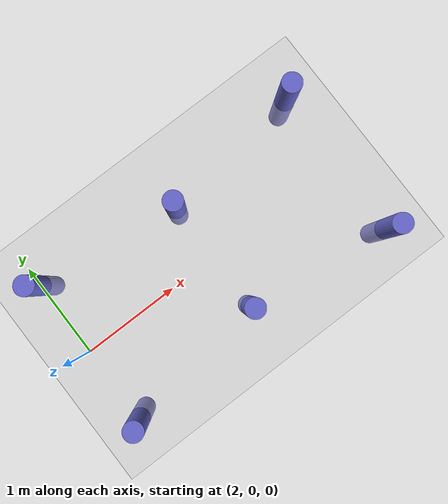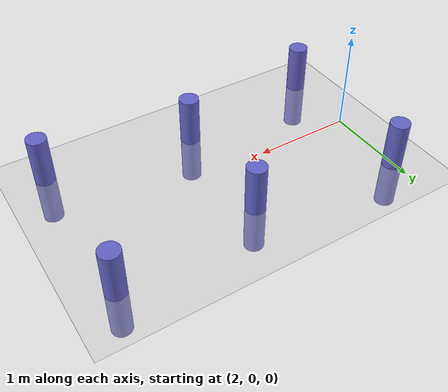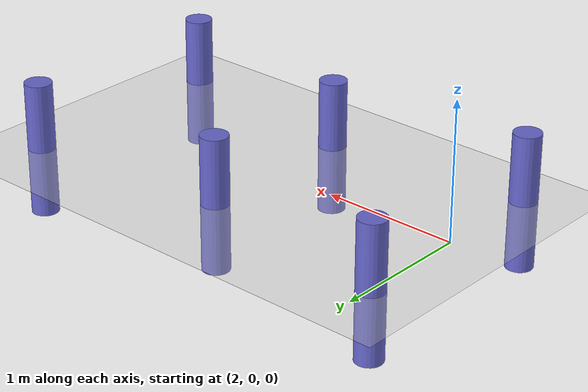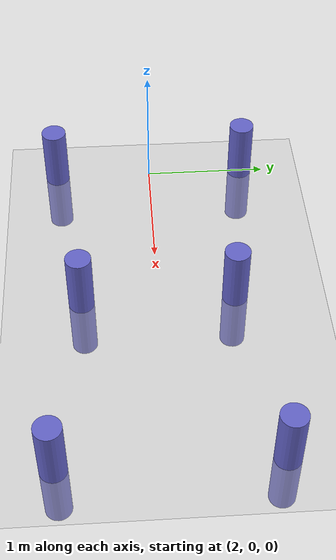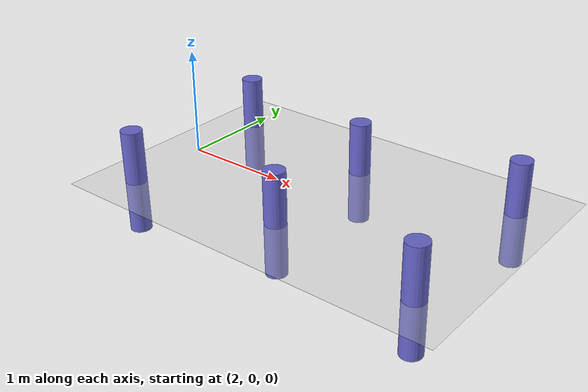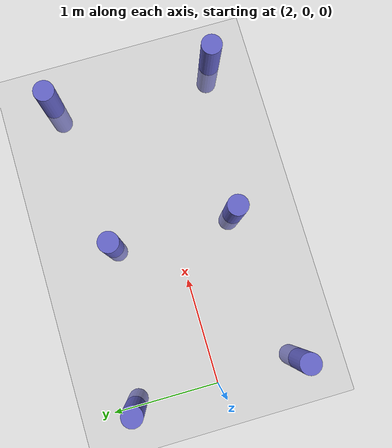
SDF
<?xml version="1.0"?>
<sdf version="1.8">
  <world name="default">

    <!-- Physics -->
    <physics type="ode">
      <real_time_update_rate>1000.0</real_time_update_rate>
      <max_step_size>0.001</max_step_size>
      <real_time_factor>1</real_time_factor>
    </physics>

    <!-- Required system plugins -->
    <plugin filename="gz-sim-physics-system"     name="gz::sim::systems::Physics"/>
    <plugin filename="gz-sim-user-commands-system" name="gz::sim::systems::UserCommands"/>
    <plugin filename="gz-sim-scene-broadcaster-system" name="gz::sim::systems::SceneBroadcaster"/>
    <plugin filename="gz-sim-sensors-system"     name="gz::sim::systems::Sensors">
      <render_engine>ogre2</render_engine>
    </plugin>
    <plugin filename="gz-sim-imu-system"         name="gz::sim::systems::Imu"/>

    <!-- Lighting -->
    <light name="sun" type="directional">
      <cast_shadows>true</cast_shadows>
      <pose>0 0 10 0 0 0</pose>
      <diffuse>0.8 0.8 0.8 1</diffuse>
      <specular>0.2 0.2 0.2 1</specular>
      <direction>-0.5 0.1 -0.9</direction>
    </light>

    <!-- Ground plane -->
    <model name="ground_plane">
      <static>true</static>
      <link name="link">
        <collision name="collision">
          <geometry>
            <plane>
              <normal>0 0 1</normal>
              <size>100 100</size>
            </plane>
          </geometry>
        </collision>
        <visual name="visual">
          <geometry>
            <plane>
              <normal>0 0 1</normal>
              <size>100 100</size>
            </plane>
          </geometry>
          <material>
            <ambient>0.8 0.8 0.8 1</ambient>
            <diffuse>0.8 0.8 0.8 1</diffuse>
          </material>
        </visual>
      </link>
    </model>

    <!-- Column 1: front-left -->
    <model name="column_1">
      <static>true</static>
      <pose>2.0 0.8 0 0 0 0</pose>
      <link name="link">
        <collision name="collision">
          <geometry>
            <cylinder>
              <radius>0.1</radius>
              <length>1.0</length>
            </cylinder>
          </geometry>
        </collision>
        <visual name="visual">
          <geometry>
            <cylinder>
              <radius>0.1</radius>
              <length>1.0</length>
            </cylinder>
          </geometry>
          <material>
            <ambient>0.4 0.4 0.8 1</ambient>
            <diffuse>0.4 0.4 0.8 1</diffuse>
          </material>
        </visual>
      </link>
    </model>

    <!-- Column 2: front-right -->
    <model name="column_2">
      <static>true</static>
      <pose>2.0 -0.8 0 0 0 0</pose>
      <link name="link">
        <collision name="collision">
          <geometry>
            <cylinder><radius>0.1</radius><length>1.0</length></cylinder>
          </geometry>
        </collision>
        <visual name="visual">
          <geometry>
            <cylinder><radius>0.1</radius><length>1.0</length></cylinder>
          </geometry>
          <material>
            <ambient>0.4 0.4 0.8 1</ambient>
            <diffuse>0.4 0.4 0.8 1</diffuse>
          </material>
        </visual>
      </link>
    </model>

    <!-- Column 3: mid-left -->
    <model name="column_3">
      <static>true</static>
      <pose>3.5 0.6 0 0 0 0</pose>
      <link name="link">
        <collision name="collision">
          <geometry>
            <cylinder><radius>0.1</radius><length>1.0</length></cylinder>
          </geometry>
        </collision>
        <visual name="visual">
          <geometry>
            <cylinder><radius>0.1</radius><length>1.0</length></cylinder>
          </geometry>
          <material>
            <ambient>0.4 0.4 0.8 1</ambient>
            <diffuse>0.4 0.4 0.8 1</diffuse>
          </material>
        </visual>
      </link>
    </model>

    <!-- Column 4: mid-right -->
    <model name="column_4">
      <static>true</static>
      <pose>3.5 -0.6 0 0 0 0</pose>
      <link name="link">
        <collision name="collision">
          <geometry>
            <cylinder><radius>0.1</radius><length>1.0</length></cylinder>
          </geometry>
        </collision>
        <visual name="visual">
          <geometry>
            <cylinder><radius>0.1</radius><length>1.0</length></cylinder>
          </geometry>
          <material>
            <ambient>0.4 0.4 0.8 1</ambient>
            <diffuse>0.4 0.4 0.8 1</diffuse>
          </material>
        </visual>
      </link>
    </model>

    <!-- Column 5: far-left -->
    <model name="column_5">
      <static>true</static>
      <pose>5.0 0.8 0 0 0 0</pose>
      <link name="link">
        <collision name="collision">
          <geometry>
            <cylinder><radius>0.1</radius><length>1.0</length></cylinder>
          </geometry>
        </collision>
        <visual name="visual">
          <geometry>
            <cylinder><radius>0.1</radius><length>1.0</length></cylinder>
          </geometry>
          <material>
            <ambient>0.4 0.4 0.8 1</ambient>
            <diffuse>0.4 0.4 0.8 1</diffuse>
          </material>
        </visual>
      </link>
    </model>

    <!-- Column 6: far-right -->
    <model name="column_6">
      <static>true</static>
      <pose>5.0 -0.8 0 0 0 0</pose>
      <link name="link">
        <collision name="collision">
          <geometry>
            <cylinder><radius>0.1</radius><length>1.0</length></cylinder>
          </geometry>
        </collision>
        <visual name="visual">
          <geometry>
            <cylinder><radius>0.1</radius><length>1.0</length></cylinder>
          </geometry>
          <material>
            <ambient>0.4 0.4 0.8 1</ambient>
            <diffuse>0.4 0.4 0.8 1</diffuse>
          </material>
        </visual>
      </link>
    </model>

  </world>
</sdf>
